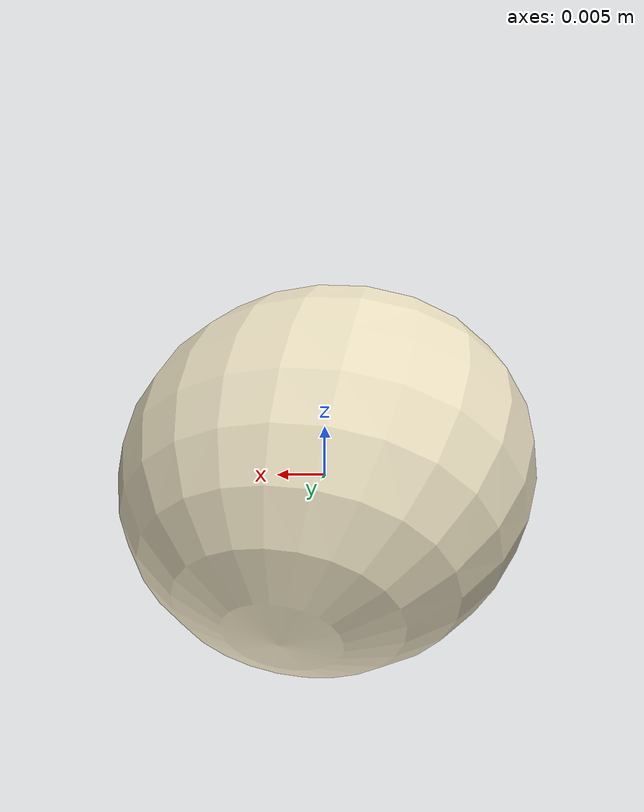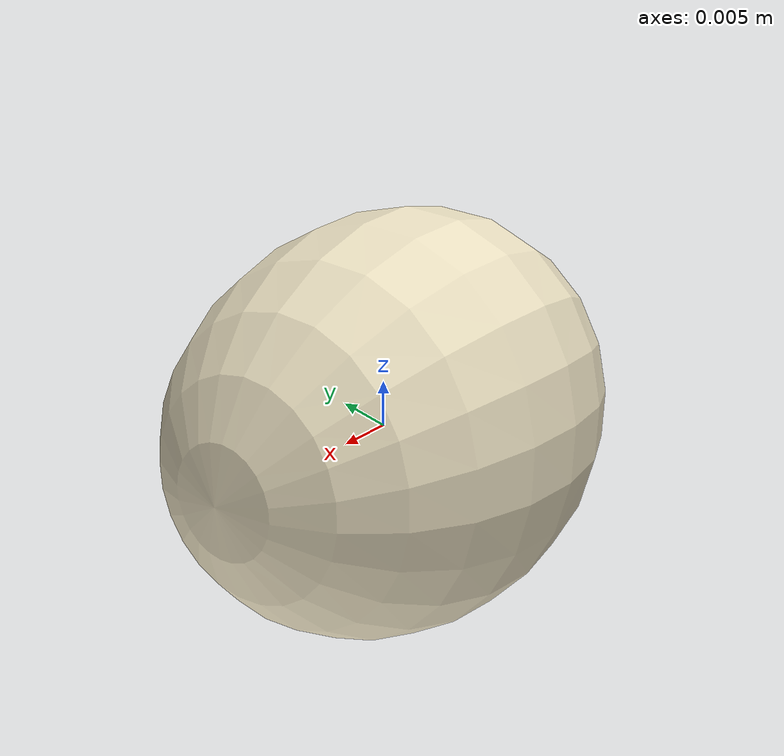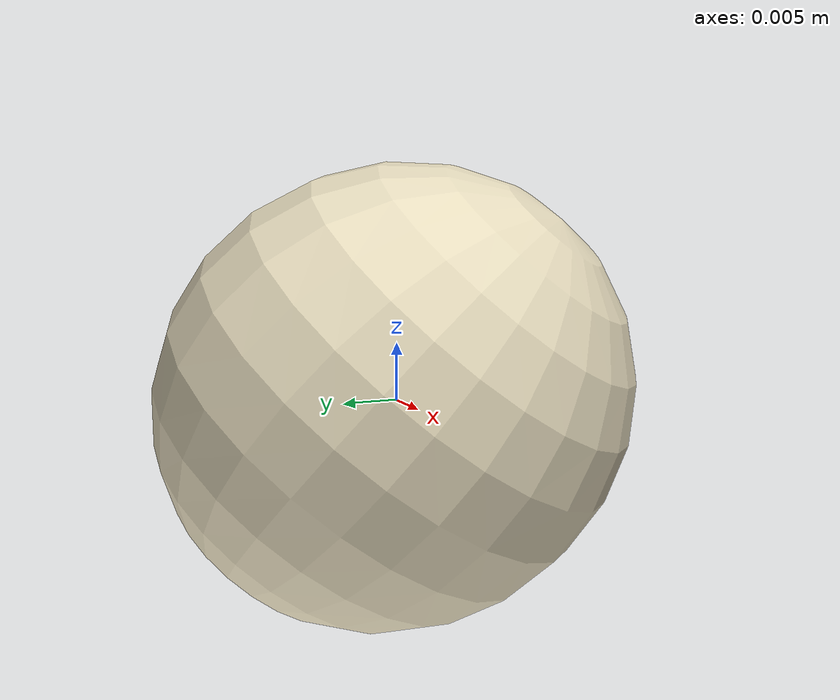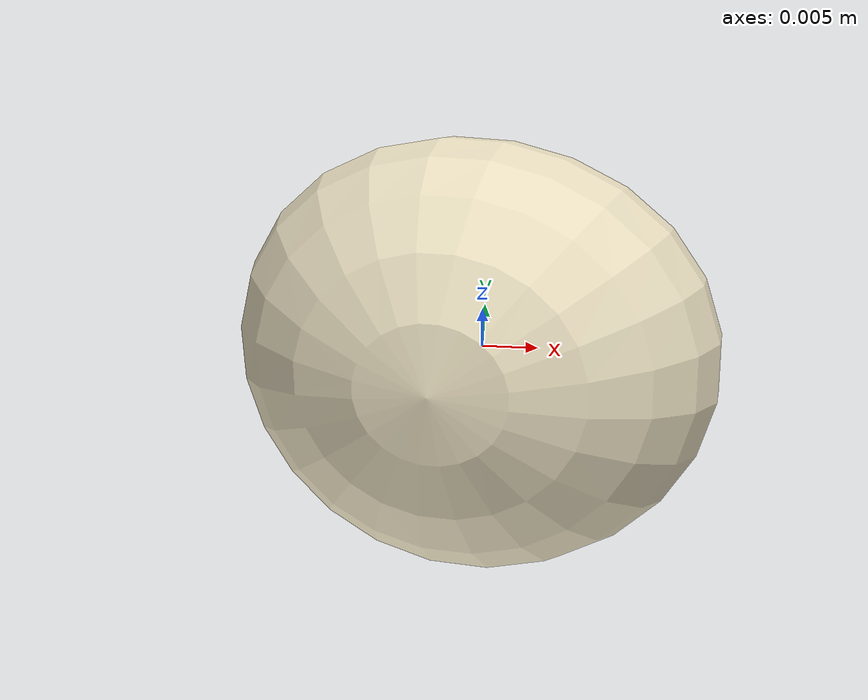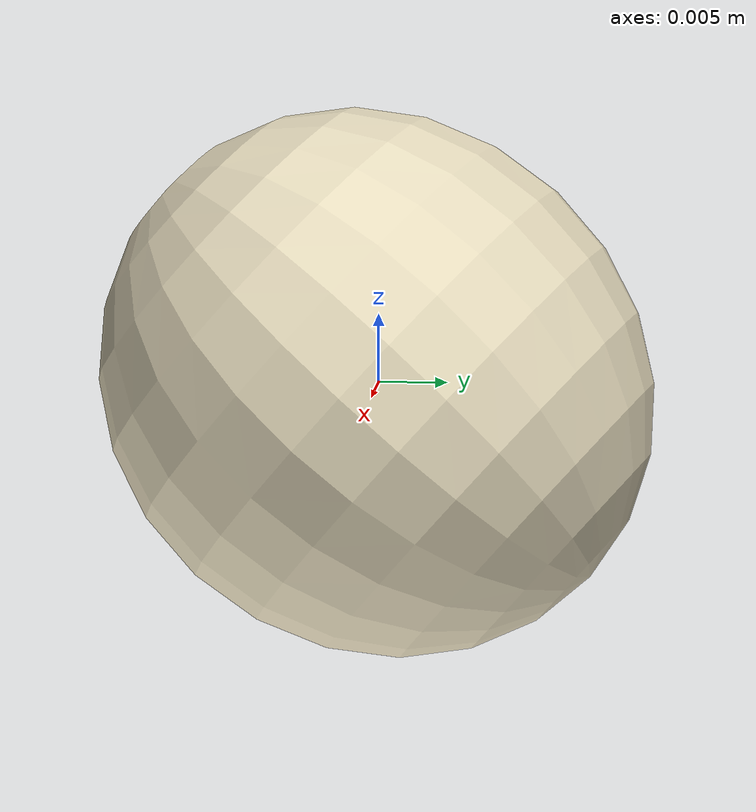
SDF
<?xml version="1.0"?>
<sdf version="1.7">
  <model name="cotton_pick_B_08">
    <static>false</static>
    <allow_auto_disable>false</allow_auto_disable>
    <link name="cotton_pick_B_08_link">
      <gravity>false</gravity>
      <self_collide>false</self_collide>
      <inertial>
        <mass>0.01200</mass>
        <inertia>
          <ixx>0.00000153</ixx>
          <iyy>0.00000153</iyy>
          <izz>0.00000153</izz>
          <ixy>0</ixy>
          <ixz>0</ixz>
          <iyz>0</iyz>
        </inertia>
      </inertial>
      <visual name="cotton_pick_B_08_visual">
        <geometry>
          <mesh>
            <uri>model://cotton_pick_B_08/meshes/cotton_pick_B_08.dae</uri>
          </mesh>
        </geometry>
      </visual>
      <collision name="cotton_pick_B_08_sphere_collision">
        <geometry>
          <sphere>
            <radius>0.01788</radius>
          </sphere>
        </geometry>
        <surface>
          <friction>
            <ode>
              <mu>1.6</mu>
              <mu2>1.6</mu2>
            </ode>
          </friction>
          <contact>
            <ode>
              <kp>8000</kp>
              <kd>80</kd>
            </ode>
          </contact>
        </surface>
      </collision>
    </link>
  </model>
</sdf>
